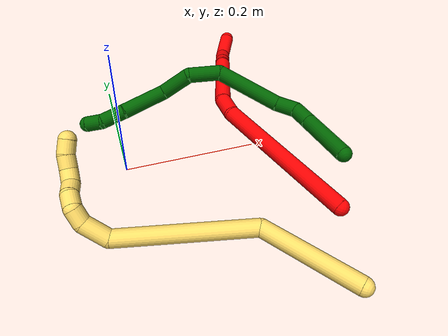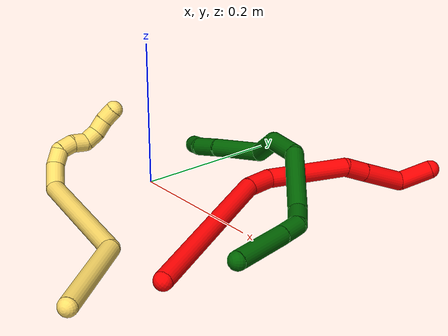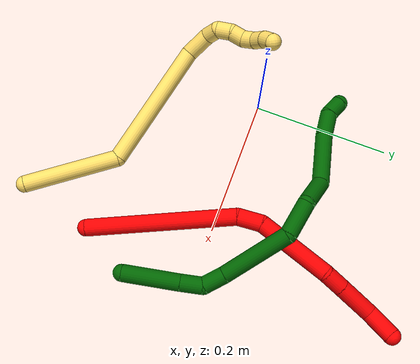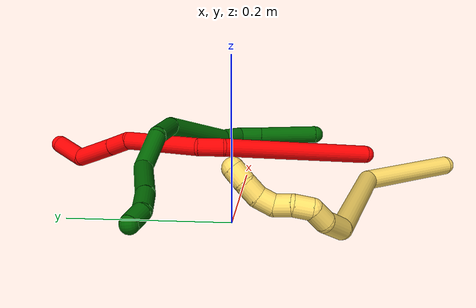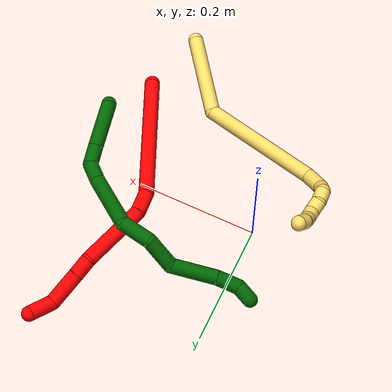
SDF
<sdf version="1.7">
 <world name="default">
  <model name="2">
   <static>0</static>
   <link name="2">
    <collision name="collision-cylinder-e_1_1_4">
     <pose>0.03514 0.098155 0.033192 -1.24471 0.326964 -0.235603</pose>
     <geometry><cylinder><radius>0.0125</radius><length>0.218824</length></cylinder></geometry>
     <surface>
      <friction><ode><mu>1.16</mu><mu2>1.16</mu2><slip1>0</slip1><slip2>0</slip2></ode></friction>
      <contact><ode><kp>1e+06</kp><kd>1</kd><max_vel>0</max_vel><min_depth>0.001</min_depth></ode></contact>
     </surface>
    </collision>
    <visual name="visual-cylinder-e_1_1_4">
     <pose>0.03514 0.098155 0.033192 -1.24471 0.326964 -0.235603</pose>
     <geometry><cylinder><radius>0.0125</radius><length>0.218824</length></cylinder></geometry>
     <material><ambient>1 0 0 1</ambient></material>
    </visual>
    <collision name="collision-cylinder-e_2_4_5">
     <pose>0.080854 0.208806 0.073558 -1.04965 0.633142 -0.374886</pose>
     <geometry><cylinder><radius>0.0125</radius><length>0.035744</length></cylinder></geometry>
     <surface>
      <friction><ode><mu>1.16</mu><mu2>1.16</mu2><slip1>0</slip1><slip2>0</slip2></ode></friction>
      <contact><ode><kp>1e+06</kp><kd>1</kd><max_vel>0</max_vel><min_depth>0.001</min_depth></ode></contact>
     </surface>
    </collision>
    <visual name="visual-cylinder-e_2_4_5">
     <pose>0.080854 0.208806 0.073558 -1.04965 0.633142 -0.374886</pose>
     <geometry><cylinder><radius>0.0125</radius><length>0.035744</length></cylinder></geometry>
     <material><ambient>1 0 0 1</ambient></material>
    </visual>
    <collision name="collision-cylinder-e_3_5_6">
     <pose>0.133537 0.242118 0.110356 -0.612522 0.860598 -0.288257</pose>
     <geometry><cylinder><radius>0.0125</radius><length>0.111069</length></cylinder></geometry>
     <surface>
      <friction><ode><mu>1.16</mu><mu2>1.16</mu2><slip1>0</slip1><slip2>0</slip2></ode></friction>
      <contact><ode><kp>1e+06</kp><kd>1</kd><max_vel>0</max_vel><min_depth>0.001</min_depth></ode></contact>
     </surface>
    </collision>
    <visual name="visual-cylinder-e_3_5_6">
     <pose>0.133537 0.242118 0.110356 -0.612522 0.860598 -0.288257</pose>
     <geometry><cylinder><radius>0.0125</radius><length>0.111069</length></cylinder></geometry>
     <material><ambient>1 0 0 1</ambient></material>
    </visual>
    <collision name="collision-cylinder-e_4_6_7">
     <pose>0.190061 0.267627 0.1431 -0.984217 1.19822 -0.701828</pose>
     <geometry><cylinder><radius>0.0125</radius><length>0.030957</length></cylinder></geometry>
     <surface>
      <friction><ode><mu>1.16</mu><mu2>1.16</mu2><slip1>0</slip1><slip2>0</slip2></ode></friction>
      <contact><ode><kp>1e+06</kp><kd>1</kd><max_vel>0</max_vel><min_depth>0.001</min_depth></ode></contact>
     </surface>
    </collision>
    <visual name="visual-cylinder-e_4_6_7">
     <pose>0.190061 0.267627 0.1431 -0.984217 1.19822 -0.701828</pose>
     <geometry><cylinder><radius>0.0125</radius><length>0.030957</length></cylinder></geometry>
     <material><ambient>1 0 0 1</ambient></material>
    </visual>
    <collision name="collision-cylinder-e_5_7_8">
     <pose>0.231677 0.281067 0.152605 -0.940181 1.19186 -0.663655</pose>
     <geometry><cylinder><radius>0.0125</radius><length>0.058551</length></cylinder></geometry>
     <surface>
      <friction><ode><mu>1.16</mu><mu2>1.16</mu2><slip1>0</slip1><slip2>0</slip2></ode></friction>
      <contact><ode><kp>1e+06</kp><kd>1</kd><max_vel>0</max_vel><min_depth>0.001</min_depth></ode></contact>
     </surface>
    </collision>
    <visual name="visual-cylinder-e_5_7_8">
     <pose>0.231677 0.281067 0.152605 -0.940181 1.19186 -0.663655</pose>
     <geometry><cylinder><radius>0.0125</radius><length>0.058551</length></cylinder></geometry>
     <material><ambient>1 0 0 1</ambient></material>
    </visual>
    <collision name="collision-cylinder-e_6_8_2">
     <pose>0.271146 0.294505 0.177168 -0.252564 0.578901 -0.075584</pose>
     <geometry><cylinder><radius>0.0125</radius><length>0.044855</length></cylinder></geometry>
     <surface>
      <friction><ode><mu>1.16</mu><mu2>1.16</mu2><slip1>0</slip1><slip2>0</slip2></ode></friction>
      <contact><ode><kp>1e+06</kp><kd>1</kd><max_vel>0</max_vel><min_depth>0.001</min_depth></ode></contact>
     </surface>
    </collision>
    <visual name="visual-cylinder-e_6_8_2">
     <pose>0.271146 0.294505 0.177168 -0.252564 0.578901 -0.075584</pose>
     <geometry><cylinder><radius>0.0125</radius><length>0.044855</length></cylinder></geometry>
     <material><ambient>1 0 0 1</ambient></material>
    </visual>
    <collision name="collision-sphere-2">
     <pose>0.283416 0.299197 0.195346 0 -0 0</pose>
     <geometry><sphere><radius>0.0125</radius></sphere></geometry>
     <surface>
      <friction><ode><mu>1.16</mu><mu2>1.16</mu2><slip1>0</slip1><slip2>0</slip2></ode></friction>
      <contact><ode><kp>1e+06</kp><kd>1</kd><max_vel>0</max_vel><min_depth>0.001</min_depth></ode></contact>
     </surface>
    </collision>
    <visual name="visual-sphere-2">
     <pose>0.283416 0.299197 0.195346 0 -0 0</pose>
     <geometry><sphere><radius>0.0125</radius></sphere></geometry>
     <material><ambient>1 0 0 1</ambient></material>
    </visual>
    <collision name="collision-sphere-4">
     <pose>0.07028 0.19631 0.066385 0 -0 0</pose>
     <geometry><sphere><radius>0.0125</radius></sphere></geometry>
     <surface>
      <friction><ode><mu>1.16</mu><mu2>1.16</mu2><slip1>0</slip1><slip2>0</slip2></ode></friction>
      <contact><ode><kp>1e+06</kp><kd>1</kd><max_vel>0</max_vel><min_depth>0.001</min_depth></ode></contact>
     </surface>
    </collision>
    <visual name="visual-sphere-4">
     <pose>0.07028 0.19631 0.066385 0 -0 0</pose>
     <geometry><sphere><radius>0.0125</radius></sphere></geometry>
     <material><ambient>1 0 0 1</ambient></material>
    </visual>
    <collision name="collision-sphere-1">
     <geometry><sphere><radius>0.0125</radius></sphere></geometry>
     <surface>
      <friction><ode><mu>1.16</mu><mu2>1.16</mu2><slip1>0</slip1><slip2>0</slip2></ode></friction>
      <contact><ode><kp>1e+06</kp><kd>1</kd><max_vel>0</max_vel><min_depth>0.001</min_depth></ode></contact>
     </surface>
    </collision>
    <visual name="visual-sphere-1">
     <geometry><sphere><radius>0.0125</radius></sphere></geometry>
     <material><ambient>1 0 0 1</ambient></material>
    </visual>
    <collision name="collision-sphere-8">
     <pose>0.258875 0.289814 0.158991 0 -0 0</pose>
     <geometry><sphere><radius>0.0125</radius></sphere></geometry>
     <surface>
      <friction><ode><mu>1.16</mu><mu2>1.16</mu2><slip1>0</slip1><slip2>0</slip2></ode></friction>
      <contact><ode><kp>1e+06</kp><kd>1</kd><max_vel>0</max_vel><min_depth>0.001</min_depth></ode></contact>
     </surface>
    </collision>
    <visual name="visual-sphere-8">
     <pose>0.258875 0.289814 0.158991 0 -0 0</pose>
     <geometry><sphere><radius>0.0125</radius></sphere></geometry>
     <material><ambient>1 0 0 1</ambient></material>
    </visual>
    <collision name="collision-sphere-5">
     <pose>0.091429 0.221301 0.080731 0 -0 0</pose>
     <geometry><sphere><radius>0.0125</radius></sphere></geometry>
     <surface>
      <friction><ode><mu>1.16</mu><mu2>1.16</mu2><slip1>0</slip1><slip2>0</slip2></ode></friction>
      <contact><ode><kp>1e+06</kp><kd>1</kd><max_vel>0</max_vel><min_depth>0.001</min_depth></ode></contact>
     </surface>
    </collision>
    <visual name="visual-sphere-5">
     <pose>0.091429 0.221301 0.080731 0 -0 0</pose>
     <geometry><sphere><radius>0.0125</radius></sphere></geometry>
     <material><ambient>1 0 0 1</ambient></material>
    </visual>
    <collision name="collision-sphere-6">
     <pose>0.175645 0.262935 0.139981 0 -0 0</pose>
     <geometry><sphere><radius>0.0125</radius></sphere></geometry>
     <surface>
      <friction><ode><mu>1.16</mu><mu2>1.16</mu2><slip1>0</slip1><slip2>0</slip2></ode></friction>
      <contact><ode><kp>1e+06</kp><kd>1</kd><max_vel>0</max_vel><min_depth>0.001</min_depth></ode></contact>
     </surface>
    </collision>
    <visual name="visual-sphere-6">
     <pose>0.175645 0.262935 0.139981 0 -0 0</pose>
     <geometry><sphere><radius>0.0125</radius></sphere></geometry>
     <material><ambient>1 0 0 1</ambient></material>
    </visual>
    <collision name="collision-sphere-7">
     <pose>0.204478 0.27232 0.146219 0 -0 0</pose>
     <geometry><sphere><radius>0.0125</radius></sphere></geometry>
     <surface>
      <friction><ode><mu>1.16</mu><mu2>1.16</mu2><slip1>0</slip1><slip2>0</slip2></ode></friction>
      <contact><ode><kp>1e+06</kp><kd>1</kd><max_vel>0</max_vel><min_depth>0.001</min_depth></ode></contact>
     </surface>
    </collision>
    <visual name="visual-sphere-7">
     <pose>0.204478 0.27232 0.146219 0 -0 0</pose>
     <geometry><sphere><radius>0.0125</radius></sphere></geometry>
     <material><ambient>1 0 0 1</ambient></material>
    </visual>
    <inertial>
     <pose>0.114044 0.187572 0.086923 0 -0 0</pose>
     <mass>0.5</mass>
     <inertia>
      <ixx>0.000702</ixx>
      <ixy>0</ixy>
      <ixz>0</ixz>
      <iyy>0.000278</iyy>
      <iyz>0</iyz>
      <izz>-0.001235</izz>
     </inertia>
    </inertial>
   </link>
   <pose>0.261569 -0.169474 0.018252 0.129075 0.666361 0.949144</pose>
  </model>
  <model name="5">
   <static>0</static>
   <link name="5">
    <collision name="collision-cylinder-e_1_1_4">
     <pose>-0.010032 0.005357 -0.069463 -3.06463 -0.143018 2.15519</pose>
     <geometry><cylinder><radius>0.0125</radius><length>0.140775</length></cylinder></geometry>
     <surface>
      <friction><ode><mu>1.16</mu><mu2>1.16</mu2><slip1>0</slip1><slip2>0</slip2></ode></friction>
      <contact><ode><kp>1e+06</kp><kd>1</kd><max_vel>0</max_vel><min_depth>0.001</min_depth></ode></contact>
     </surface>
    </collision>
    <visual name="visual-cylinder-e_1_1_4">
     <pose>-0.010032 0.005357 -0.069463 -3.06463 -0.143018 2.15519</pose>
     <geometry><cylinder><radius>0.0125</radius><length>0.140775</length></cylinder></geometry>
     <material><ambient>1 0.858824 0.4 1</ambient></material>
    </visual>
    <collision name="collision-cylinder-e_2_4_5">
     <pose>-0.085177 -0.017986 -0.20555 2.73485 -0.731464 -2.15367</pose>
     <geometry><cylinder><radius>0.0125</radius><length>0.194957</length></cylinder></geometry>
     <surface>
      <friction><ode><mu>1.16</mu><mu2>1.16</mu2><slip1>0</slip1><slip2>0</slip2></ode></friction>
      <contact><ode><kp>1e+06</kp><kd>1</kd><max_vel>0</max_vel><min_depth>0.001</min_depth></ode></contact>
     </surface>
    </collision>
    <visual name="visual-cylinder-e_2_4_5">
     <pose>-0.085177 -0.017986 -0.20555 2.73485 -0.731464 -2.15367</pose>
     <geometry><cylinder><radius>0.0125</radius><length>0.194957</length></cylinder></geometry>
     <material><ambient>1 0.858824 0.4 1</ambient></material>
    </visual>
    <collision name="collision-cylinder-e_3_5_6">
     <pose>-0.162287 -0.040864 -0.286606 -2.75815 -0.656859 2.10606</pose>
     <geometry><cylinder><radius>0.0125</radius><length>0.039299</length></cylinder></geometry>
     <surface>
      <friction><ode><mu>1.16</mu><mu2>1.16</mu2><slip1>0</slip1><slip2>0</slip2></ode></friction>
      <contact><ode><kp>1e+06</kp><kd>1</kd><max_vel>0</max_vel><min_depth>0.001</min_depth></ode></contact>
     </surface>
    </collision>
    <visual name="visual-cylinder-e_3_5_6">
     <pose>-0.162287 -0.040864 -0.286606 -2.75815 -0.656859 2.10606</pose>
     <geometry><cylinder><radius>0.0125</radius><length>0.039299</length></cylinder></geometry>
     <material><ambient>1 0.858824 0.4 1</ambient></material>
    </visual>
    <collision name="collision-cylinder-e_4_6_7">
     <pose>-0.178847 -0.027098 -0.307542 -2.25691 -0.418011 0.842059</pose>
     <geometry><cylinder><radius>0.0125</radius><length>0.02247</length></cylinder></geometry>
     <surface>
      <friction><ode><mu>1.16</mu><mu2>1.16</mu2><slip1>0</slip1><slip2>0</slip2></ode></friction>
      <contact><ode><kp>1e+06</kp><kd>1</kd><max_vel>0</max_vel><min_depth>0.001</min_depth></ode></contact>
     </surface>
    </collision>
    <visual name="visual-cylinder-e_4_6_7">
     <pose>-0.178847 -0.027098 -0.307542 -2.25691 -0.418011 0.842059</pose>
     <geometry><cylinder><radius>0.0125</radius><length>0.02247</length></cylinder></geometry>
     <material><ambient>1 0.858824 0.4 1</ambient></material>
    </visual>
    <collision name="collision-cylinder-e_5_7_8">
     <pose>-0.180973 -0.01375 -0.32304 -2.60053 0.227952 -0.78292</pose>
     <geometry><cylinder><radius>0.0125</radius><length>0.021542</length></cylinder></geometry>
     <surface>
      <friction><ode><mu>1.16</mu><mu2>1.16</mu2><slip1>0</slip1><slip2>0</slip2></ode></friction>
      <contact><ode><kp>1e+06</kp><kd>1</kd><max_vel>0</max_vel><min_depth>0.001</min_depth></ode></contact>
     </surface>
    </collision>
    <visual name="visual-cylinder-e_5_7_8">
     <pose>-0.180973 -0.01375 -0.32304 -2.60053 0.227952 -0.78292</pose>
     <geometry><cylinder><radius>0.0125</radius><length>0.021542</length></cylinder></geometry>
     <material><ambient>1 0.858824 0.4 1</ambient></material>
    </visual>
    <collision name="collision-cylinder-e_6_8_9">
     <pose>-0.17289 -0.004876 -0.339657 -2.71451 0.593364 -1.90767</pose>
     <geometry><cylinder><radius>0.0125</radius><length>0.020206</length></cylinder></geometry>
     <surface>
      <friction><ode><mu>1.16</mu><mu2>1.16</mu2><slip1>0</slip1><slip2>0</slip2></ode></friction>
      <contact><ode><kp>1e+06</kp><kd>1</kd><max_vel>0</max_vel><min_depth>0.001</min_depth></ode></contact>
     </surface>
    </collision>
    <visual name="visual-cylinder-e_6_8_9">
     <pose>-0.17289 -0.004876 -0.339657 -2.71451 0.593364 -1.90767</pose>
     <geometry><cylinder><radius>0.0125</radius><length>0.020206</length></cylinder></geometry>
     <material><ambient>1 0.858824 0.4 1</ambient></material>
    </visual>
    <collision name="collision-cylinder-e_7_9_10">
     <pose>-0.166106 0.005908 -0.354204 -2.32862 0.112211 -0.259485</pose>
     <geometry><cylinder><radius>0.0125</radius><length>0.02027</length></cylinder></geometry>
     <surface>
      <friction><ode><mu>1.16</mu><mu2>1.16</mu2><slip1>0</slip1><slip2>0</slip2></ode></friction>
      <contact><ode><kp>1e+06</kp><kd>1</kd><max_vel>0</max_vel><min_depth>0.001</min_depth></ode></contact>
     </surface>
    </collision>
    <visual name="visual-cylinder-e_7_9_10">
     <pose>-0.166106 0.005908 -0.354204 -2.32862 0.112211 -0.259485</pose>
     <geometry><cylinder><radius>0.0125</radius><length>0.02027</length></cylinder></geometry>
     <material><ambient>1 0.858824 0.4 1</ambient></material>
    </visual>
    <collision name="collision-cylinder-e_8_10_11">
     <pose>-0.166134 0.022245 -0.365773 -2.04643 -0.114097 0.186769</pose>
     <geometry><cylinder><radius>0.0125</radius><length>0.020429</length></cylinder></geometry>
     <surface>
      <friction><ode><mu>1.16</mu><mu2>1.16</mu2><slip1>0</slip1><slip2>0</slip2></ode></friction>
      <contact><ode><kp>1e+06</kp><kd>1</kd><max_vel>0</max_vel><min_depth>0.001</min_depth></ode></contact>
     </surface>
    </collision>
    <visual name="visual-cylinder-e_8_10_11">
     <pose>-0.166134 0.022245 -0.365773 -2.04643 -0.114097 0.186769</pose>
     <geometry><cylinder><radius>0.0125</radius><length>0.020429</length></cylinder></geometry>
     <material><ambient>1 0.858824 0.4 1</ambient></material>
    </visual>
    <collision name="collision-cylinder-e_9_11_2">
     <pose>-0.166101 0.040698 -0.373603 -1.89634 0.119553 -0.16635</pose>
     <geometry><cylinder><radius>0.0125</radius><length>0.020052</length></cylinder></geometry>
     <surface>
      <friction><ode><mu>1.16</mu><mu2>1.16</mu2><slip1>0</slip1><slip2>0</slip2></ode></friction>
      <contact><ode><kp>1e+06</kp><kd>1</kd><max_vel>0</max_vel><min_depth>0.001</min_depth></ode></contact>
     </surface>
    </collision>
    <visual name="visual-cylinder-e_9_11_2">
     <pose>-0.166101 0.040698 -0.373603 -1.89634 0.119553 -0.16635</pose>
     <geometry><cylinder><radius>0.0125</radius><length>0.020052</length></cylinder></geometry>
     <material><ambient>1 0.858824 0.4 1</ambient></material>
    </visual>
    <collision name="collision-sphere-2">
     <pose>-0.164906 0.05013 -0.376787 0 -0 0</pose>
     <geometry><sphere><radius>0.0125</radius></sphere></geometry>
     <surface>
      <friction><ode><mu>1.16</mu><mu2>1.16</mu2><slip1>0</slip1><slip2>0</slip2></ode></friction>
      <contact><ode><kp>1e+06</kp><kd>1</kd><max_vel>0</max_vel><min_depth>0.001</min_depth></ode></contact>
     </surface>
    </collision>
    <visual name="visual-sphere-2">
     <pose>-0.164906 0.05013 -0.376787 0 -0 0</pose>
     <geometry><sphere><radius>0.0125</radius></sphere></geometry>
     <material><ambient>1 0.858824 0.4 1</ambient></material>
    </visual>
    <collision name="collision-sphere-11">
     <pose>-0.167297 0.031267 -0.37042 0 -0 0</pose>
     <geometry><sphere><radius>0.0125</radius></sphere></geometry>
     <surface>
      <friction><ode><mu>1.16</mu><mu2>1.16</mu2><slip1>0</slip1><slip2>0</slip2></ode></friction>
      <contact><ode><kp>1e+06</kp><kd>1</kd><max_vel>0</max_vel><min_depth>0.001</min_depth></ode></contact>
     </surface>
    </collision>
    <visual name="visual-sphere-11">
     <pose>-0.167297 0.031267 -0.37042 0 -0 0</pose>
     <geometry><sphere><radius>0.0125</radius></sphere></geometry>
     <material><ambient>1 0.858824 0.4 1</ambient></material>
    </visual>
    <collision name="collision-sphere-10">
     <pose>-0.164971 0.013224 -0.361126 0 -0 0</pose>
     <geometry><sphere><radius>0.0125</radius></sphere></geometry>
     <surface>
      <friction><ode><mu>1.16</mu><mu2>1.16</mu2><slip1>0</slip1><slip2>0</slip2></ode></friction>
      <contact><ode><kp>1e+06</kp><kd>1</kd><max_vel>0</max_vel><min_depth>0.001</min_depth></ode></contact>
     </surface>
    </collision>
    <visual name="visual-sphere-10">
     <pose>-0.164971 0.013224 -0.361126 0 -0 0</pose>
     <geometry><sphere><radius>0.0125</radius></sphere></geometry>
     <material><ambient>1 0.858824 0.4 1</ambient></material>
    </visual>
    <collision name="collision-sphere-9">
     <pose>-0.167241 -0.001407 -0.347281 0 -0 0</pose>
     <geometry><sphere><radius>0.0125</radius></sphere></geometry>
     <surface>
      <friction><ode><mu>1.16</mu><mu2>1.16</mu2><slip1>0</slip1><slip2>0</slip2></ode></friction>
      <contact><ode><kp>1e+06</kp><kd>1</kd><max_vel>0</max_vel><min_depth>0.001</min_depth></ode></contact>
     </surface>
    </collision>
    <visual name="visual-sphere-9">
     <pose>-0.167241 -0.001407 -0.347281 0 -0 0</pose>
     <geometry><sphere><radius>0.0125</radius></sphere></geometry>
     <material><ambient>1 0.858824 0.4 1</ambient></material>
    </visual>
    <collision name="collision-sphere-4">
     <pose>-0.020065 0.010714 -0.138925 0 -0 0</pose>
     <geometry><sphere><radius>0.0125</radius></sphere></geometry>
     <surface>
      <friction><ode><mu>1.16</mu><mu2>1.16</mu2><slip1>0</slip1><slip2>0</slip2></ode></friction>
      <contact><ode><kp>1e+06</kp><kd>1</kd><max_vel>0</max_vel><min_depth>0.001</min_depth></ode></contact>
     </surface>
    </collision>
    <visual name="visual-sphere-4">
     <pose>-0.020065 0.010714 -0.138925 0 -0 0</pose>
     <geometry><sphere><radius>0.0125</radius></sphere></geometry>
     <material><ambient>1 0.858824 0.4 1</ambient></material>
    </visual>
    <collision name="collision-sphere-1">
     <geometry><sphere><radius>0.0125</radius></sphere></geometry>
     <surface>
      <friction><ode><mu>1.16</mu><mu2>1.16</mu2><slip1>0</slip1><slip2>0</slip2></ode></friction>
      <contact><ode><kp>1e+06</kp><kd>1</kd><max_vel>0</max_vel><min_depth>0.001</min_depth></ode></contact>
     </surface>
    </collision>
    <visual name="visual-sphere-1">
     <geometry><sphere><radius>0.0125</radius></sphere></geometry>
     <material><ambient>1 0.858824 0.4 1</ambient></material>
    </visual>
    <collision name="collision-sphere-8">
     <pose>-0.178539 -0.008346 -0.332034 0 -0 0</pose>
     <geometry><sphere><radius>0.0125</radius></sphere></geometry>
     <surface>
      <friction><ode><mu>1.16</mu><mu2>1.16</mu2><slip1>0</slip1><slip2>0</slip2></ode></friction>
      <contact><ode><kp>1e+06</kp><kd>1</kd><max_vel>0</max_vel><min_depth>0.001</min_depth></ode></contact>
     </surface>
    </collision>
    <visual name="visual-sphere-8">
     <pose>-0.178539 -0.008346 -0.332034 0 -0 0</pose>
     <geometry><sphere><radius>0.0125</radius></sphere></geometry>
     <material><ambient>1 0.858824 0.4 1</ambient></material>
    </visual>
    <collision name="collision-sphere-5">
     <pose>-0.150288 -0.046685 -0.272175 0 -0 0</pose>
     <geometry><sphere><radius>0.0125</radius></sphere></geometry>
     <surface>
      <friction><ode><mu>1.16</mu><mu2>1.16</mu2><slip1>0</slip1><slip2>0</slip2></ode></friction>
      <contact><ode><kp>1e+06</kp><kd>1</kd><max_vel>0</max_vel><min_depth>0.001</min_depth></ode></contact>
     </surface>
    </collision>
    <visual name="visual-sphere-5">
     <pose>-0.150288 -0.046685 -0.272175 0 -0 0</pose>
     <geometry><sphere><radius>0.0125</radius></sphere></geometry>
     <material><ambient>1 0.858824 0.4 1</ambient></material>
    </visual>
    <collision name="collision-sphere-6">
     <pose>-0.174286 -0.035042 -0.301037 0 -0 0</pose>
     <geometry><sphere><radius>0.0125</radius></sphere></geometry>
     <surface>
      <friction><ode><mu>1.16</mu><mu2>1.16</mu2><slip1>0</slip1><slip2>0</slip2></ode></friction>
      <contact><ode><kp>1e+06</kp><kd>1</kd><max_vel>0</max_vel><min_depth>0.001</min_depth></ode></contact>
     </surface>
    </collision>
    <visual name="visual-sphere-6">
     <pose>-0.174286 -0.035042 -0.301037 0 -0 0</pose>
     <geometry><sphere><radius>0.0125</radius></sphere></geometry>
     <material><ambient>1 0.858824 0.4 1</ambient></material>
    </visual>
    <collision name="collision-sphere-7">
     <pose>-0.183407 -0.019154 -0.314047 0 -0 0</pose>
     <geometry><sphere><radius>0.0125</radius></sphere></geometry>
     <surface>
      <friction><ode><mu>1.16</mu><mu2>1.16</mu2><slip1>0</slip1><slip2>0</slip2></ode></friction>
      <contact><ode><kp>1e+06</kp><kd>1</kd><max_vel>0</max_vel><min_depth>0.001</min_depth></ode></contact>
     </surface>
    </collision>
    <visual name="visual-sphere-7">
     <pose>-0.183407 -0.019154 -0.314047 0 -0 0</pose>
     <geometry><sphere><radius>0.0125</radius></sphere></geometry>
     <material><ambient>1 0.858824 0.4 1</ambient></material>
    </visual>
    <inertial>
     <pose>-0.091796 -0.007943 -0.207983 0 -0 0</pose>
     <mass>0.5</mass>
     <inertia>
      <ixx>-0.000584</ixx>
      <ixy>0</ixy>
      <ixz>0</ixz>
      <iyy>0.000404</iyy>
      <iyz>0</iyz>
      <izz>0.000583</izz>
     </inertia>
    </inertial>
   </link>
   <pose>0.232755 -0.279776 0.012257 1.41313 0.532851 0.474434</pose>
  </model>
  <model name="6">
   <static>0</static>
   <link name="6">
    <collision name="collision-cylinder-e_1_1_4">
     <pose>-0.014687 0.00763 0.037956 -0.198379 -0.362574 0.036479</pose>
     <geometry><cylinder><radius>0.0125</radius><length>0.082815</length></cylinder></geometry>
     <surface>
      <friction><ode><mu>1.16</mu><mu2>1.16</mu2><slip1>0</slip1><slip2>0</slip2></ode></friction>
      <contact><ode><kp>1e+06</kp><kd>1</kd><max_vel>0</max_vel><min_depth>0.001</min_depth></ode></contact>
     </surface>
    </collision>
    <visual name="visual-cylinder-e_1_1_4">
     <pose>-0.014687 0.00763 0.037956 -0.198379 -0.362574 0.036479</pose>
     <geometry><cylinder><radius>0.0125</radius><length>0.082815</length></cylinder></geometry>
     <material><ambient>0 0.392157 0.003922 1</ambient></material>
    </visual>
    <collision name="collision-cylinder-e_2_4_5">
     <pose>-0.03563 0.01826 0.090532 -0.202354 -0.397019 0.040839</pose>
     <geometry><cylinder><radius>0.0125</radius><length>0.032366</length></cylinder></geometry>
     <surface>
      <friction><ode><mu>1.16</mu><mu2>1.16</mu2><slip1>0</slip1><slip2>0</slip2></ode></friction>
      <contact><ode><kp>1e+06</kp><kd>1</kd><max_vel>0</max_vel><min_depth>0.001</min_depth></ode></contact>
     </surface>
    </collision>
    <visual name="visual-cylinder-e_2_4_5">
     <pose>-0.03563 0.01826 0.090532 -0.202354 -0.397019 0.040839</pose>
     <geometry><cylinder><radius>0.0125</radius><length>0.032366</length></cylinder></geometry>
     <material><ambient>0 0.392157 0.003922 1</ambient></material>
    </visual>
    <collision name="collision-cylinder-e_3_5_6">
     <pose>-0.053021 0.030266 0.113505 -0.823075 -0.736252 0.333565</pose>
     <geometry><cylinder><radius>0.0125</radius><length>0.033157</length></cylinder></geometry>
     <surface>
      <friction><ode><mu>1.16</mu><mu2>1.16</mu2><slip1>0</slip1><slip2>0</slip2></ode></friction>
      <contact><ode><kp>1e+06</kp><kd>1</kd><max_vel>0</max_vel><min_depth>0.001</min_depth></ode></contact>
     </surface>
    </collision>
    <visual name="visual-cylinder-e_3_5_6">
     <pose>-0.053021 0.030266 0.113505 -0.823075 -0.736252 0.333565</pose>
     <geometry><cylinder><radius>0.0125</radius><length>0.033157</length></cylinder></geometry>
     <material><ambient>0 0.392157 0.003922 1</ambient></material>
    </visual>
    <collision name="collision-cylinder-e_4_6_7">
     <pose>-0.109114 0.058429 0.1427 -0.743239 -1.0089 0.423869</pose>
     <geometry><cylinder><radius>0.0125</radius><length>0.106258</length></cylinder></geometry>
     <surface>
      <friction><ode><mu>1.16</mu><mu2>1.16</mu2><slip1>0</slip1><slip2>0</slip2></ode></friction>
      <contact><ode><kp>1e+06</kp><kd>1</kd><max_vel>0</max_vel><min_depth>0.001</min_depth></ode></contact>
     </surface>
    </collision>
    <visual name="visual-cylinder-e_4_6_7">
     <pose>-0.109114 0.058429 0.1427 -0.743239 -1.0089 0.423869</pose>
     <geometry><cylinder><radius>0.0125</radius><length>0.106258</length></cylinder></geometry>
     <material><ambient>0 0.392157 0.003922 1</ambient></material>
    </visual>
    <collision name="collision-cylinder-e_5_7_8">
     <pose>-0.17074 0.097124 0.163121 -1.59232 -0.706049 0.720129</pose>
     <geometry><cylinder><radius>0.0125</radius><length>0.051371</length></cylinder></geometry>
     <surface>
      <friction><ode><mu>1.16</mu><mu2>1.16</mu2><slip1>0</slip1><slip2>0</slip2></ode></friction>
      <contact><ode><kp>1e+06</kp><kd>1</kd><max_vel>0</max_vel><min_depth>0.001</min_depth></ode></contact>
     </surface>
    </collision>
    <visual name="visual-cylinder-e_5_7_8">
     <pose>-0.17074 0.097124 0.163121 -1.59232 -0.706049 0.720129</pose>
     <geometry><cylinder><radius>0.0125</radius><length>0.051371</length></cylinder></geometry>
     <material><ambient>0 0.392157 0.003922 1</ambient></material>
    </visual>
    <collision name="collision-cylinder-e_6_8_9">
     <pose>-0.189771 0.143256 0.166624 -1.42431 -0.087801 0.07581</pose>
     <geometry><cylinder><radius>0.0125</radius><length>0.053968</length></cylinder></geometry>
     <surface>
      <friction><ode><mu>1.16</mu><mu2>1.16</mu2><slip1>0</slip1><slip2>0</slip2></ode></friction>
      <contact><ode><kp>1e+06</kp><kd>1</kd><max_vel>0</max_vel><min_depth>0.001</min_depth></ode></contact>
     </surface>
    </collision>
    <visual name="visual-cylinder-e_6_8_9">
     <pose>-0.189771 0.143256 0.166624 -1.42431 -0.087801 0.07581</pose>
     <geometry><cylinder><radius>0.0125</radius><length>0.053968</length></cylinder></geometry>
     <material><ambient>0 0.392157 0.003922 1</ambient></material>
    </visual>
    <collision name="collision-cylinder-e_7_9_10">
     <pose>-0.208418 0.200656 0.15629 -2.00422 -0.447194 0.683673</pose>
     <geometry><cylinder><radius>0.0125</radius><length>0.075298</length></cylinder></geometry>
     <surface>
      <friction><ode><mu>1.16</mu><mu2>1.16</mu2><slip1>0</slip1><slip2>0</slip2></ode></friction>
      <contact><ode><kp>1e+06</kp><kd>1</kd><max_vel>0</max_vel><min_depth>0.001</min_depth></ode></contact>
     </surface>
    </collision>
    <visual name="visual-cylinder-e_7_9_10">
     <pose>-0.208418 0.200656 0.15629 -2.00422 -0.447194 0.683673</pose>
     <geometry><cylinder><radius>0.0125</radius><length>0.075298</length></cylinder></geometry>
     <material><ambient>0 0.392157 0.003922 1</ambient></material>
    </visual>
    <collision name="collision-cylinder-e_8_10_11">
     <pose>-0.232526 0.248191 0.137491 -1.83592 -0.424181 0.548964</pose>
     <geometry><cylinder><radius>0.0125</radius><length>0.038035</length></cylinder></geometry>
     <surface>
      <friction><ode><mu>1.16</mu><mu2>1.16</mu2><slip1>0</slip1><slip2>0</slip2></ode></friction>
      <contact><ode><kp>1e+06</kp><kd>1</kd><max_vel>0</max_vel><min_depth>0.001</min_depth></ode></contact>
     </surface>
    </collision>
    <visual name="visual-cylinder-e_8_10_11">
     <pose>-0.232526 0.248191 0.137491 -1.83592 -0.424181 0.548964</pose>
     <geometry><cylinder><radius>0.0125</radius><length>0.038035</length></cylinder></geometry>
     <material><ambient>0 0.392157 0.003922 1</ambient></material>
    </visual>
    <collision name="collision-cylinder-e_9_11_2">
     <pose>-0.246432 0.276484 0.135763 -1.33219 -0.472122 0.373687</pose>
     <geometry><cylinder><radius>0.0125</radius><length>0.026731</length></cylinder></geometry>
     <surface>
      <friction><ode><mu>1.16</mu><mu2>1.16</mu2><slip1>0</slip1><slip2>0</slip2></ode></friction>
      <contact><ode><kp>1e+06</kp><kd>1</kd><max_vel>0</max_vel><min_depth>0.001</min_depth></ode></contact>
     </surface>
    </collision>
    <visual name="visual-cylinder-e_9_11_2">
     <pose>-0.246432 0.276484 0.135763 -1.33219 -0.472122 0.373687</pose>
     <geometry><cylinder><radius>0.0125</radius><length>0.026731</length></cylinder></geometry>
     <material><ambient>0 0.392157 0.003922 1</ambient></material>
    </visual>
    <collision name="collision-sphere-2">
     <pose>-0.25251 0.28805 0.138577 0 -0 0</pose>
     <geometry><sphere><radius>0.0125</radius></sphere></geometry>
     <surface>
      <friction><ode><mu>1.16</mu><mu2>1.16</mu2><slip1>0</slip1><slip2>0</slip2></ode></friction>
      <contact><ode><kp>1e+06</kp><kd>1</kd><max_vel>0</max_vel><min_depth>0.001</min_depth></ode></contact>
     </surface>
    </collision>
    <visual name="visual-sphere-2">
     <pose>-0.25251 0.28805 0.138577 0 -0 0</pose>
     <geometry><sphere><radius>0.0125</radius></sphere></geometry>
     <material><ambient>0 0.392157 0.003922 1</ambient></material>
    </visual>
    <collision name="collision-sphere-11">
     <pose>-0.240354 0.264917 0.13295 0 -0 0</pose>
     <geometry><sphere><radius>0.0125</radius></sphere></geometry>
     <surface>
      <friction><ode><mu>1.16</mu><mu2>1.16</mu2><slip1>0</slip1><slip2>0</slip2></ode></friction>
      <contact><ode><kp>1e+06</kp><kd>1</kd><max_vel>0</max_vel><min_depth>0.001</min_depth></ode></contact>
     </surface>
    </collision>
    <visual name="visual-sphere-11">
     <pose>-0.240354 0.264917 0.13295 0 -0 0</pose>
     <geometry><sphere><radius>0.0125</radius></sphere></geometry>
     <material><ambient>0 0.392157 0.003922 1</ambient></material>
    </visual>
    <collision name="collision-sphere-10">
     <pose>-0.224699 0.231464 0.142033 0 -0 0</pose>
     <geometry><sphere><radius>0.0125</radius></sphere></geometry>
     <surface>
      <friction><ode><mu>1.16</mu><mu2>1.16</mu2><slip1>0</slip1><slip2>0</slip2></ode></friction>
      <contact><ode><kp>1e+06</kp><kd>1</kd><max_vel>0</max_vel><min_depth>0.001</min_depth></ode></contact>
     </surface>
    </collision>
    <visual name="visual-sphere-10">
     <pose>-0.224699 0.231464 0.142033 0 -0 0</pose>
     <geometry><sphere><radius>0.0125</radius></sphere></geometry>
     <material><ambient>0 0.392157 0.003922 1</ambient></material>
    </visual>
    <collision name="collision-sphere-9">
     <pose>-0.192138 0.169849 0.170547 0 -0 0</pose>
     <geometry><sphere><radius>0.0125</radius></sphere></geometry>
     <surface>
      <friction><ode><mu>1.16</mu><mu2>1.16</mu2><slip1>0</slip1><slip2>0</slip2></ode></friction>
      <contact><ode><kp>1e+06</kp><kd>1</kd><max_vel>0</max_vel><min_depth>0.001</min_depth></ode></contact>
     </surface>
    </collision>
    <visual name="visual-sphere-9">
     <pose>-0.192138 0.169849 0.170547 0 -0 0</pose>
     <geometry><sphere><radius>0.0125</radius></sphere></geometry>
     <material><ambient>0 0.392157 0.003922 1</ambient></material>
    </visual>
    <collision name="collision-sphere-4">
     <pose>-0.029373 0.01526 0.075912 0 -0 0</pose>
     <geometry><sphere><radius>0.0125</radius></sphere></geometry>
     <surface>
      <friction><ode><mu>1.16</mu><mu2>1.16</mu2><slip1>0</slip1><slip2>0</slip2></ode></friction>
      <contact><ode><kp>1e+06</kp><kd>1</kd><max_vel>0</max_vel><min_depth>0.001</min_depth></ode></contact>
     </surface>
    </collision>
    <visual name="visual-sphere-4">
     <pose>-0.029373 0.01526 0.075912 0 -0 0</pose>
     <geometry><sphere><radius>0.0125</radius></sphere></geometry>
     <material><ambient>0 0.392157 0.003922 1</ambient></material>
    </visual>
    <collision name="collision-sphere-1">
     <geometry><sphere><radius>0.0125</radius></sphere></geometry>
     <surface>
      <friction><ode><mu>1.16</mu><mu2>1.16</mu2><slip1>0</slip1><slip2>0</slip2></ode></friction>
      <contact><ode><kp>1e+06</kp><kd>1</kd><max_vel>0</max_vel><min_depth>0.001</min_depth></ode></contact>
     </surface>
    </collision>
    <visual name="visual-sphere-1">
     <geometry><sphere><radius>0.0125</radius></sphere></geometry>
     <material><ambient>0 0.392157 0.003922 1</ambient></material>
    </visual>
    <collision name="collision-sphere-8">
     <pose>-0.187405 0.116664 0.1627 0 -0 0</pose>
     <geometry><sphere><radius>0.0125</radius></sphere></geometry>
     <surface>
      <friction><ode><mu>1.16</mu><mu2>1.16</mu2><slip1>0</slip1><slip2>0</slip2></ode></friction>
      <contact><ode><kp>1e+06</kp><kd>1</kd><max_vel>0</max_vel><min_depth>0.001</min_depth></ode></contact>
     </surface>
    </collision>
    <visual name="visual-sphere-8">
     <pose>-0.187405 0.116664 0.1627 0 -0 0</pose>
     <geometry><sphere><radius>0.0125</radius></sphere></geometry>
     <material><ambient>0 0.392157 0.003922 1</ambient></material>
    </visual>
    <collision name="collision-sphere-5">
     <pose>-0.041888 0.021259 0.105151 0 -0 0</pose>
     <geometry><sphere><radius>0.0125</radius></sphere></geometry>
     <surface>
      <friction><ode><mu>1.16</mu><mu2>1.16</mu2><slip1>0</slip1><slip2>0</slip2></ode></friction>
      <contact><ode><kp>1e+06</kp><kd>1</kd><max_vel>0</max_vel><min_depth>0.001</min_depth></ode></contact>
     </surface>
    </collision>
    <visual name="visual-sphere-5">
     <pose>-0.041888 0.021259 0.105151 0 -0 0</pose>
     <geometry><sphere><radius>0.0125</radius></sphere></geometry>
     <material><ambient>0 0.392157 0.003922 1</ambient></material>
    </visual>
    <collision name="collision-sphere-6">
     <pose>-0.064153 0.039274 0.121858 0 -0 0</pose>
     <geometry><sphere><radius>0.0125</radius></sphere></geometry>
     <surface>
      <friction><ode><mu>1.16</mu><mu2>1.16</mu2><slip1>0</slip1><slip2>0</slip2></ode></friction>
      <contact><ode><kp>1e+06</kp><kd>1</kd><max_vel>0</max_vel><min_depth>0.001</min_depth></ode></contact>
     </surface>
    </collision>
    <visual name="visual-sphere-6">
     <pose>-0.064153 0.039274 0.121858 0 -0 0</pose>
     <geometry><sphere><radius>0.0125</radius></sphere></geometry>
     <material><ambient>0 0.392157 0.003922 1</ambient></material>
    </visual>
    <collision name="collision-sphere-7">
     <pose>-0.154074 0.077583 0.163541 0 -0 0</pose>
     <geometry><sphere><radius>0.0125</radius></sphere></geometry>
     <surface>
      <friction><ode><mu>1.16</mu><mu2>1.16</mu2><slip1>0</slip1><slip2>0</slip2></ode></friction>
      <contact><ode><kp>1e+06</kp><kd>1</kd><max_vel>0</max_vel><min_depth>0.001</min_depth></ode></contact>
     </surface>
    </collision>
    <visual name="visual-sphere-7">
     <pose>-0.154074 0.077583 0.163541 0 -0 0</pose>
     <geometry><sphere><radius>0.0125</radius></sphere></geometry>
     <material><ambient>0 0.392157 0.003922 1</ambient></material>
    </visual>
    <inertial>
     <pose>-0.131719 0.106191 0.125998 0 -0 0</pose>
     <mass>0.5</mass>
     <inertia>
      <ixx>0.000201</ixx>
      <ixy>0</ixy>
      <ixz>0</ixz>
      <iyy>0.000239</iyy>
      <iyz>0</iyz>
      <izz>3.7e-05</izz>
     </inertia>
    </inertial>
   </link>
   <pose>0.304505 -0.094718 0.036553 -1.79593 0.827833 -0.357972</pose>
  </model>
 </world>
</sdf>
